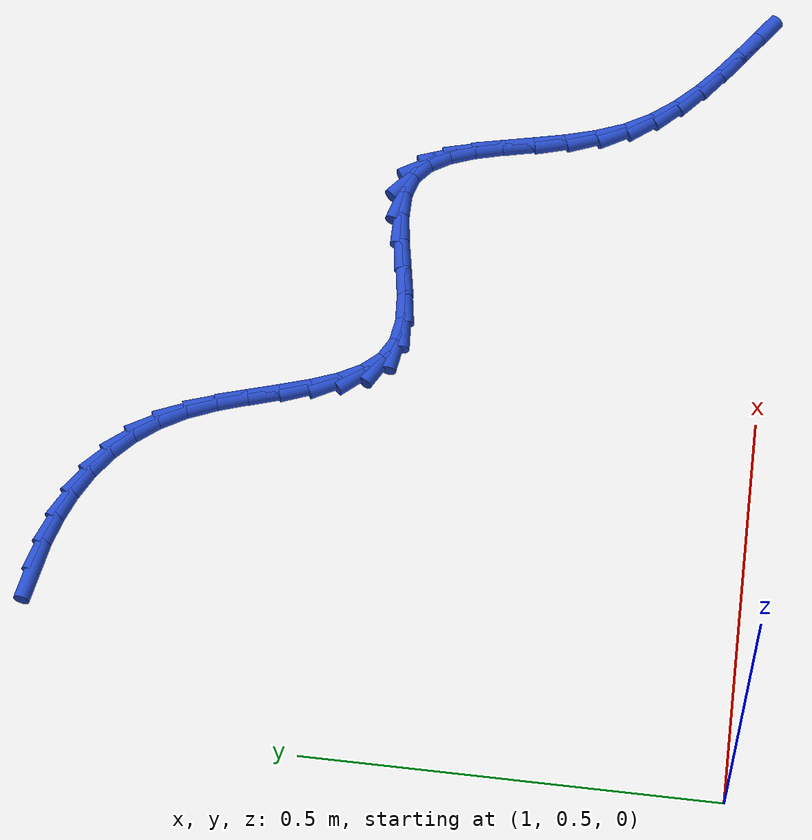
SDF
<sdf version="1.6">
 <world name="default">
  <model name="ground_plane">
   <static>1</static>
   <link name="link">
    <collision name="collision">
     <geometry><plane><normal>0 0 1</normal><size>100 100</size></plane></geometry>
     <surface><friction><ode><mu>100</mu><mu2>50</mu2></ode></friction></surface>
    </collision>
    <visual name="visual">
     <cast_shadows>0</cast_shadows>
     <geometry><plane><normal>0 0 1</normal><size>100 100</size></plane></geometry>
     <material>
      <script><uri>file://media/materials/scripts/gazebo.material</uri><name>Gazebo/WhiteGlow</name></script>
     </material>
    </visual>
   </link>
  </model>
  <model name="line">
   <link name="link_55">
    <pose>1.1948772431644508 1.345434276347483 0.01 0 1.57 -0.17480476393260974</pose>
    <collision name="collision">
     <geometry><cylinder><radius>0.01</radius><length>0.08</length></cylinder></geometry>
    </collision>
    <visual name="visual">
     <material>
      <script><name>Gazebo/Blue</name><uri>file://media/materials/scripts/gazebo.material</uri></script>
     </material>
     <geometry><cylinder><radius>0.01</radius><length>0.08</length></cylinder></geometry>
    </visual>
   </link>
   <link name="link_56">
    <pose>1.2319717836648358 1.3388831102733407 0.01 0 1.57 -0.2641574221111155</pose>
    <collision name="collision">
     <geometry><cylinder><radius>0.01</radius><length>0.08</length></cylinder></geometry>
    </collision>
    <visual name="visual">
     <material>
      <script><name>Gazebo/Blue</name><uri>file://media/materials/scripts/gazebo.material</uri></script>
     </material>
     <geometry><cylinder><radius>0.01</radius><length>0.08</length></cylinder></geometry>
    </visual>
   </link>
   <link name="link_57">
    <pose>1.2677226648640547 1.3292132788328093 0.01 0 1.57 -0.3640571839372722</pose>
    <collision name="collision">
     <geometry><cylinder><radius>0.01</radius><length>0.08</length></cylinder></geometry>
    </collision>
    <visual name="visual">
     <material>
      <script><name>Gazebo/Blue</name><uri>file://media/materials/scripts/gazebo.material</uri></script>
     </material>
     <geometry><cylinder><radius>0.01</radius><length>0.08</length></cylinder></geometry>
    </visual>
   </link>
   <link name="link_58">
    <pose>1.3017159219692587 1.3162604213900584 0.01 0 1.57 -0.47587558719633277</pose>
    <collision name="collision">
     <geometry><cylinder><radius>0.01</radius><length>0.08</length></cylinder></geometry>
    </collision>
    <visual name="visual">
     <material>
      <script><name>Gazebo/Blue</name><uri>file://media/materials/scripts/gazebo.material</uri></script>
     </material>
     <geometry><cylinder><radius>0.01</radius><length>0.08</length></cylinder></geometry>
    </visual>
   </link>
   <link name="link_59">
    <pose>1.3335375901876017 1.299860177309258 0.01 0 1.57 -0.6002443509306218</pose>
    <collision name="collision">
     <geometry><cylinder><radius>0.01</radius><length>0.08</length></cylinder></geometry>
    </collision>
    <visual name="visual">
     <material>
      <script><name>Gazebo/Blue</name><uri>file://media/materials/scripts/gazebo.material</uri></script>
     </material>
     <geometry><cylinder><radius>0.01</radius><length>0.08</length></cylinder></geometry>
    </visual>
   </link>
   <link name="link_60">
    <pose>1.3627737047262347 1.2798481859545772 0.01 0 1.57 -0.736491432162217</pose>
    <collision name="collision">
     <geometry><cylinder><radius>0.01</radius><length>0.08</length></cylinder></geometry>
    </collision>
    <visual name="visual">
     <material>
      <script><name>Gazebo/Blue</name><uri>file://media/materials/scripts/gazebo.material</uri></script>
     </material>
     <geometry><cylinder><radius>0.01</radius><length>0.08</length></cylinder></geometry>
    </visual>
   </link>
   <link name="link_61">
    <pose>1.3890103007923118 1.2560600866901865 0.01 0 1.57 -0.882133702780651</pose>
    <collision name="collision">
     <geometry><cylinder><radius>0.01</radius><length>0.08</length></cylinder></geometry>
    </collision>
    <visual name="visual">
     <material>
      <script><name>Gazebo/Blue</name><uri>file://media/materials/scripts/gazebo.material</uri></script>
     </material>
     <geometry><cylinder><radius>0.01</radius><length>0.08</length></cylinder></geometry>
    </visual>
   </link>
   <link name="link_62">
    <pose>1.4118334135929844 1.2283315188802557 0.01 0 1.57 -1.0326805408324085</pose>
    <collision name="collision">
     <geometry><cylinder><radius>0.01</radius><length>0.08</length></cylinder></geometry>
    </collision>
    <visual name="visual">
     <material>
      <script><name>Gazebo/Blue</name><uri>file://media/materials/scripts/gazebo.material</uri></script>
     </material>
     <geometry><cylinder><radius>0.01</radius><length>0.08</length></cylinder></geometry>
    </visual>
   </link>
   <link name="link_63">
    <pose>1.4308319617072212 1.1965012915856983 0.01 0 1.57 -1.1648842897388751</pose>
    <collision name="collision">
     <geometry><cylinder><radius>0.01</radius><length>0.08</length></cylinder></geometry>
    </collision>
    <visual name="visual">
     <material>
      <script><name>Gazebo/Blue</name><uri>file://media/materials/scripts/gazebo.material</uri></script>
     </material>
     <geometry><cylinder><radius>0.01</radius><length>0.08</length></cylinder></geometry>
    </visual>
   </link>
   <link name="link_64">
    <pose>1.4461036501958089 1.1609675239246888 0.01 0 1.57 -1.2446633629824646</pose>
    <collision name="collision">
     <geometry><cylinder><radius>0.01</radius><length>0.08</length></cylinder></geometry>
    </collision>
    <visual name="visual">
     <material>
      <script><name>Gazebo/Blue</name><uri>file://media/materials/scripts/gazebo.material</uri></script>
     </material>
     <geometry><cylinder><radius>0.01</radius><length>0.08</length></cylinder></geometry>
    </visual>
   </link>
   <link name="link_65">
    <pose>1.4588347300500655 1.1233249758627701 0.01 0 1.57 -1.2765330228267462</pose>
    <collision name="collision">
     <geometry><cylinder><radius>0.01</radius><length>0.08</length></cylinder></geometry>
    </collision>
    <visual name="visual">
     <material>
      <script><name>Gazebo/Blue</name><uri>file://media/materials/scripts/gazebo.material</uri></script>
     </material>
     <geometry><cylinder><radius>0.01</radius><length>0.08</length></cylinder></geometry>
    </visual>
   </link>
   <link name="link_66">
    <pose>1.4703517745765737 1.0853226639839069 0.01 0 1.57 -1.263240333934518</pose>
    <collision name="collision">
     <geometry><cylinder><radius>0.01</radius><length>0.08</length></cylinder></geometry>
    </collision>
    <visual name="visual">
     <material>
      <script><name>Gazebo/Blue</name><uri>file://media/materials/scripts/gazebo.material</uri></script>
     </material>
     <geometry><cylinder><radius>0.01</radius><length>0.08</length></cylinder></geometry>
    </visual>
   </link>
   <link name="link_67">
    <pose>1.4819813570819134 1.0487096048720652 0.01 0 1.57 -1.1985895858658875</pose>
    <collision name="collision">
     <geometry><cylinder><radius>0.01</radius><length>0.08</length></cylinder></geometry>
    </collision>
    <visual name="visual">
     <material>
      <script><name>Gazebo/Blue</name><uri>file://media/materials/scripts/gazebo.material</uri></script>
     </material>
     <geometry><cylinder><radius>0.01</radius><length>0.08</length></cylinder></geometry>
    </visual>
   </link>
   <link name="link_68">
    <pose>1.4950500508726665 1.0152348151112096 0.01 0 1.57 -1.0649702297724188</pose>
    <collision name="collision">
     <geometry><cylinder><radius>0.01</radius><length>0.08</length></cylinder></geometry>
    </collision>
    <visual name="visual">
     <material>
      <script><name>Gazebo/Blue</name><uri>file://media/materials/scripts/gazebo.material</uri></script>
     </material>
     <geometry><cylinder><radius>0.01</radius><length>0.08</length></cylinder></geometry>
    </visual>
   </link>
   <link name="link_69">
    <pose>1.5108844292554147 0.9866473112853061 0.01 0 1.57 -0.8337050981032906</pose>
    <collision name="collision">
     <geometry><cylinder><radius>0.01</radius><length>0.08</length></cylinder></geometry>
    </collision>
    <visual name="visual">
     <material>
      <script><name>Gazebo/Blue</name><uri>file://media/materials/scripts/gazebo.material</uri></script>
     </material>
     <geometry><cylinder><radius>0.01</radius><length>0.08</length></cylinder></geometry>
    </visual>
   </link>
   <link name="link_70">
    <pose>1.530811065536738 0.9646961099783193 0.01 0 1.57 -0.4914833316701815</pose>
    <collision name="collision">
     <geometry><cylinder><radius>0.01</radius><length>0.08</length></cylinder></geometry>
    </collision>
    <visual name="visual">
     <material>
      <script><name>Gazebo/Blue</name><uri>file://media/materials/scripts/gazebo.material</uri></script>
     </material>
     <geometry><cylinder><radius>0.01</radius><length>0.08</length></cylinder></geometry>
    </visual>
   </link>
   <link name="link_71">
    <pose>1.556155798328719 0.9511292012238209 0.01 0 1.57 -0.14231514319397232</pose>
    <collision name="collision">
     <geometry><cylinder><radius>0.01</radius><length>0.08</length></cylinder></geometry>
    </collision>
    <visual name="visual">
     <material>
      <script><name>Gazebo/Blue</name><uri>file://media/materials/scripts/gazebo.material</uri></script>
     </material>
     <geometry><cylinder><radius>0.01</radius><length>0.08</length></cylinder></geometry>
    </visual>
   </link>
   <link name="link_72">
    <pose>1.5874894284046954 0.9466395999716825 0.01 0 1.57 0.06249385432634463</pose>
    <collision name="collision">
     <geometry><cylinder><radius>0.01</radius><length>0.08</length></cylinder></geometry>
    </collision>
    <visual name="visual">
     <material>
      <script><name>Gazebo/Blue</name><uri>file://media/materials/scripts/gazebo.material</uri></script>
     </material>
     <geometry><cylinder><radius>0.01</radius><length>0.08</length></cylinder></geometry>
    </visual>
   </link>
   <link name="link_73">
    <pose>1.623202796200517 0.948874376026403 0.01 0 1.57 0.1577567117582689</pose>
    <collision name="collision">
     <geometry><cylinder><radius>0.01</radius><length>0.08</length></cylinder></geometry>
    </collision>
    <visual name="visual">
     <material>
      <script><name>Gazebo/Blue</name><uri>file://media/materials/scripts/gazebo.material</uri></script>
     </material>
     <geometry><cylinder><radius>0.01</radius><length>0.08</length></cylinder></geometry>
    </visual>
   </link>
   <link name="link_74">
    <pose>1.661295639174587 0.9549341313531258 0.01 0 1.57 0.17961237932217142</pose>
    <collision name="collision">
     <geometry><cylinder><radius>0.01</radius><length>0.08</length></cylinder></geometry>
    </collision>
    <visual name="visual">
     <material>
      <script><name>Gazebo/Blue</name><uri>file://media/materials/scripts/gazebo.material</uri></script>
     </material>
     <geometry><cylinder><radius>0.01</radius><length>0.08</length></cylinder></geometry>
    </visual>
   </link>
   <link name="link_75">
    <pose>1.6997676947853058 0.9619194679169941 0.01 0 1.57 0.1351649167424212</pose>
    <collision name="collision">
     <geometry><cylinder><radius>0.01</radius><length>0.08</length></cylinder></geometry>
    </collision>
    <visual name="visual">
     <material>
      <script><name>Gazebo/Blue</name><uri>file://media/materials/scripts/gazebo.material</uri></script>
     </material>
     <geometry><cylinder><radius>0.01</radius><length>0.08</length></cylinder></geometry>
    </visual>
   </link>
   <link name="link_76">
    <pose>1.7366187004910747 0.9669309876831511 0.01 0 1.57 0.004162064750348324</pose>
    <collision name="collision">
     <geometry><cylinder><radius>0.01</radius><length>0.08</length></cylinder></geometry>
    </collision>
    <visual name="visual">
     <material>
      <script><name>Gazebo/Blue</name><uri>file://media/materials/scripts/gazebo.material</uri></script>
     </material>
     <geometry><cylinder><radius>0.01</radius><length>0.08</length></cylinder></geometry>
    </visual>
   </link>
   <link name="link_77">
    <pose>1.7698483937502953 0.9670692926167399 0.01 0 1.57 -0.2694297465666531</pose>
    <collision name="collision">
     <geometry><cylinder><radius>0.01</radius><length>0.08</length></cylinder></geometry>
    </collision>
    <visual name="visual">
     <material>
      <script><name>Gazebo/Blue</name><uri>file://media/materials/scripts/gazebo.material</uri></script>
     </material>
     <geometry><cylinder><radius>0.01</radius><length>0.08</length></cylinder></geometry>
    </visual>
   </link>
   <link name="link_78">
    <pose>1.7974630783442147 0.9594436548518048 0.01 0 1.57 -0.6767344606360437</pose>
    <collision name="collision">
     <geometry><cylinder><radius>0.01</radius><length>0.08</length></cylinder></geometry>
    </collision>
    <visual name="visual">
     <material>
      <script><name>Gazebo/Blue</name><uri>file://media/materials/scripts/gazebo.material</uri></script>
     </material>
     <geometry><cylinder><radius>0.01</radius><length>0.08</length></cylinder></geometry>
    </visual>
   </link>
   <link name="link_79">
    <pose>1.8185097135505401 0.9425374274401372 0.01 0 1.57 -1.0072825536661352</pose>
    <collision name="collision">
     <geometry><cylinder><radius>0.01</radius><length>0.08</length></cylinder></geometry>
    </collision>
    <visual name="visual">
     <material>
      <script><name>Gazebo/Blue</name><uri>file://media/materials/scripts/gazebo.material</uri></script>
     </material>
     <geometry><cylinder><radius>0.01</radius><length>0.08</length></cylinder></geometry>
    </visual>
   </link>
   <link name="link_80">
    <pose>1.8342044959416008 0.917698223107107 0.01 0 1.57 -1.206943200504616</pose>
    <collision name="collision">
     <geometry><cylinder><radius>0.01</radius><length>0.08</length></cylinder></geometry>
    </collision>
    <visual name="visual">
     <material>
      <script><name>Gazebo/Blue</name><uri>file://media/materials/scripts/gazebo.material</uri></script>
     </material>
     <geometry><cylinder><radius>0.01</radius><length>0.08</length></cylinder></geometry>
    </visual>
   </link>
   <link name="link_81">
    <pose>1.846034852523112 0.8866317870860084 0.01 0 1.57 -1.3111584066107633</pose>
    <collision name="collision">
     <geometry><cylinder><radius>0.01</radius><length>0.08</length></cylinder></geometry>
    </collision>
    <visual name="visual">
     <material>
      <script><name>Gazebo/Blue</name><uri>file://media/materials/scripts/gazebo.material</uri></script>
     </material>
     <geometry><cylinder><radius>0.01</radius><length>0.08</length></cylinder></geometry>
    </visual>
   </link>
   <link name="link_82">
    <pose>1.8554882103007924 0.8510438646101358 0.01 0 1.57 -1.3513920573671303</pose>
    <collision name="collision">
     <geometry><cylinder><radius>0.01</radius><length>0.08</length></cylinder></geometry>
    </collision>
    <visual name="visual">
     <material>
      <script><name>Gazebo/Blue</name><uri>file://media/materials/scripts/gazebo.material</uri></script>
     </material>
     <geometry><cylinder><radius>0.01</radius><length>0.08</length></cylinder></geometry>
    </visual>
   </link>
   <link name="link_83">
    <pose>1.8640519962803581 0.8126402009127831 0.01 0 1.57 -1.3429620112486003</pose>
    <collision name="collision">
     <geometry><cylinder><radius>0.01</radius><length>0.08</length></cylinder></geometry>
    </collision>
    <visual name="visual">
     <material>
      <script><name>Gazebo/Blue</name><uri>file://media/materials/scripts/gazebo.material</uri></script>
     </material>
     <geometry><cylinder><radius>0.01</radius><length>0.08</length></cylinder></geometry>
    </visual>
   </link>
   <link name="link_84">
    <pose>1.8732136374675272 0.7731265412272458 0.01 0 1.57 -1.2894699400062954</pose>
    <collision name="collision">
     <geometry><cylinder><radius>0.01</radius><length>0.08</length></cylinder></geometry>
    </collision>
    <visual name="visual">
     <material>
      <script><name>Gazebo/Blue</name><uri>file://media/materials/scripts/gazebo.material</uri></script>
     </material>
     <geometry><cylinder><radius>0.01</radius><length>0.08</length></cylinder></geometry>
    </visual>
   </link>
   <link name="link_85">
    <pose>1.8844605608680165 0.7342086307868172 0.01 0 1.57 -1.1862220626526745</pose>
    <collision name="collision">
     <geometry><cylinder><radius>0.01</radius><length>0.08</length></cylinder></geometry>
    </collision>
    <visual name="visual">
     <material>
      <script><name>Gazebo/Blue</name><uri>file://media/materials/scripts/gazebo.material</uri></script>
     </material>
     <geometry><cylinder><radius>0.01</radius><length>0.08</length></cylinder></geometry>
    </visual>
   </link>
   <link name="link_86">
    <pose>1.8992801934875434 0.697592214824793 0.01 0 1.57 -1.0367568311186584</pose>
    <collision name="collision">
     <geometry><cylinder><radius>0.01</radius><length>0.08</length></cylinder></geometry>
    </collision>
    <visual name="visual">
     <material>
      <script><name>Gazebo/Blue</name><uri>file://media/materials/scripts/gazebo.material</uri></script>
     </material>
     <geometry><cylinder><radius>0.01</radius><length>0.08</length></cylinder></geometry>
    </visual>
   </link>
   <link name="link_87">
    <pose>1.9187741632120376 0.6646273606892414 0.01 0 1.57 -0.8953120859929183</pose>
    <collision name="collision">
     <geometry><cylinder><radius>0.01</radius><length>0.08</length></cylinder></geometry>
    </collision>
    <visual name="visual">
     <material>
      <script><name>Gazebo/Blue</name><uri>file://media/materials/scripts/gazebo.material</uri></script>
     </material>
     <geometry><cylinder><radius>0.01</radius><length>0.08</length></cylinder></geometry>
    </visual>
   </link>
   <link name="link_88">
    <pose>1.942396139450572 0.635144841473986 0.01 0 1.57 -0.781860019135283</pose>
    <collision name="collision">
     <geometry><cylinder><radius>0.01</radius><length>0.08</length></cylinder></geometry>
    </collision>
    <visual name="visual">
     <material>
      <script><name>Gazebo/Blue</name><uri>file://media/materials/scripts/gazebo.material</uri></script>
     </material>
     <geometry><cylinder><radius>0.01</radius><length>0.08</length></cylinder></geometry>
    </visual>
   </link>
   <link name="link_89">
    <pose>1.9691598576572256 0.6085698441252252 0.01 0 1.57 -0.6976487571255474</pose>
    <collision name="collision">
     <geometry><cylinder><radius>0.01</radius><length>0.08</length></cylinder></geometry>
    </collision>
    <visual name="visual">
     <material>
      <script><name>Gazebo/Blue</name><uri>file://media/materials/scripts/gazebo.material</uri></script>
     </material>
     <geometry><cylinder><radius>0.01</radius><length>0.08</length></cylinder></geometry>
    </visual>
   </link>
   <link name="link_90">
    <pose>1.9980790489629827 0.5843275516035898 0.01 0 1.57 -0.6417569368771321</pose>
    <collision name="collision">
     <geometry><cylinder><radius>0.01</radius><length>0.08</length></cylinder></geometry>
    </collision>
    <visual name="visual">
     <material>
      <script><name>Gazebo/Blue</name><uri>file://media/materials/scripts/gazebo.material</uri></script>
     </material>
     <geometry><cylinder><radius>0.01</radius><length>0.08</length></cylinder></geometry>
    </visual>
   </link>
   <link name="link_91">
    <pose>2.0281674444988287 0.5618431468697094 0.01 0 1.57 -0.6131915807693886</pose>
    <collision name="collision">
     <geometry><cylinder><radius>0.01</radius><length>0.08</length></cylinder></geometry>
    </collision>
    <visual name="visual">
     <material>
      <script><name>Gazebo/Blue</name><uri>file://media/materials/scripts/gazebo.material</uri></script>
     </material>
     <geometry><cylinder><radius>0.01</radius><length>0.08</length></cylinder></geometry>
    </visual>
   </link>
   <link name="link_92">
    <pose>2.058438775395745 0.5405418128842143 0.01 0 1.57 -0.6122157791218025</pose>
    <collision name="collision">
     <geometry><cylinder><radius>0.01</radius><length>0.08</length></cylinder></geometry>
    </collision>
    <visual name="visual">
     <material>
      <script><name>Gazebo/Blue</name><uri>file://media/materials/scripts/gazebo.material</uri></script>
     </material>
     <geometry><cylinder><radius>0.01</radius><length>0.08</length></cylinder></geometry>
    </visual>
   </link>
  </model>
 </world>
</sdf>
